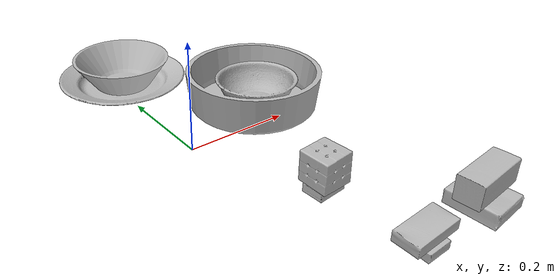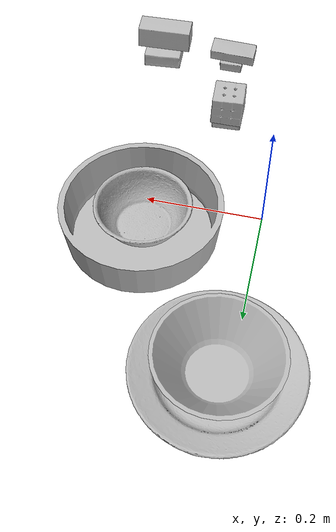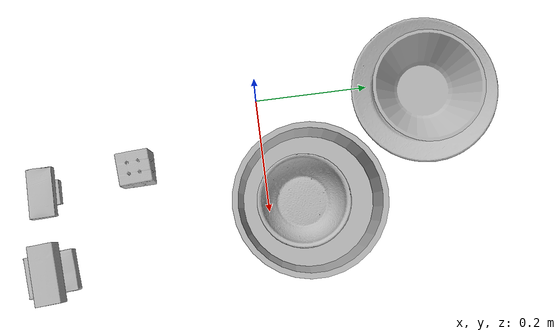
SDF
<?xml version="1.0" ?>
<sdf version="1.4">
  <world name="default">
    <light name="light1" type="point">
      <pose>0 0 1 0 0 0</pose>
      <diffuse>3 3 3 1</diffuse>
      <specular>3 3 3 1</specular>
    </light>
    <light name="light2" type="point">
      <pose>0 0.5 2 0 0 0</pose>
      <diffuse>1 1 1 1</diffuse>
      <specular>1 1 1 1</specular>
    </light>
    <light name="light3" type="point">
      <pose>0 0.5 2 0 0 0</pose>
      <diffuse>3 3 3 1</diffuse>
      <specular>3 3 3 1</specular>
    </light>
    <scene>
      <ambient>0.7 0.7 0.7</ambient>
    </scene>
    <model name="box1">
      <link name="link_box1">
        <collision name="default">
          <geometry>
            <mesh>
              <uri>model://cracker_box/collision_meshes/collision.obj</uri>
              <scale>0.25 0.25 0.25</scale>
            </mesh>
          </geometry>
          <surface>
            <friction>
              <ode>
                <mu>0.5</mu>
                <mu2>0.5</mu2>
              </ode>
            </friction>
          </surface>
        </collision>
        <visual name="default">
          <geometry>
            <mesh>
              <uri>model://cracker_box/visual_meshes/visual.dae</uri>
              <scale>0.25 0.25 0.25</scale>
            </mesh>
          </geometry>
        </visual>
        <inertial>
          <mass>0.050503700971603394</mass>
          <pose>0.0002366037224419415 6.358561950037256e-05 -0.0004257383698131889 -0.00031620760376762643 -0.011106489600284392 0.0025467959332018085</pose>
          <inertia>
            <ixx>8.02868e-06</ixx>
            <iyy>1.3256925e-05</iyy>
            <izz>1.8918852e-05</izz>
            <ixy>0</ixy>
            <ixz>0</ixz>
            <iyz>0</iyz>
          </inertia>
        </inertial>
      </link>
      <pose>0.09992917627096176 -0.21985317766666412 0.00911968294531107 -0.01172757208586933 -0.00735673897063831 0.05389628231183103</pose>
    </model>
    <model name="box11">
      <link name="link_box11">
        <collision name="default">
          <geometry>
            <mesh>
              <uri>model://rubiks_cube/collision_meshes/collision.obj</uri>
              <scale>1.0 1.0 1.0</scale>
            </mesh>
          </geometry>
          <surface>
            <friction>
              <ode>
                <mu>0.5</mu>
                <mu2>0.5</mu2>
              </ode>
            </friction>
          </surface>
        </collision>
        <visual name="default">
          <geometry>
            <mesh>
              <uri>model://rubiks_cube/visual_meshes/visual.dae</uri>
              <scale>1.0 1.0 1.0</scale>
            </mesh>
          </geometry>
        </visual>
        <inertial>
          <mass>0.15071694552898407</mass>
          <pose>2.6721043468569405e-05 5.2569666877388954e-05 -7.264316082000732e-06 -0.05467297119259296 -0.09814009057422186 -0.034453654418704155</pose>
          <inertia>
            <ixx>8.328124e-05</ixx>
            <iyy>8.2892846e-05</iyy>
            <izz>8.397135e-05</izz>
            <ixy>0</ixy>
            <ixz>0</ixz>
            <iyz>0</iyz>
          </inertia>
        </inertial>
      </link>
      <pose>0.0992947518825531 -0.21992871165275574 0.046680036932229996 -0.006763152957125365 -0.023963913121686675 0.054275246480647465</pose>
    </model>
    <model name="box2">
      <link name="link_box2">
        <collision name="default">
          <geometry>
            <mesh>
              <uri>model://gelatin_box/collision_meshes/collision.obj</uri>
              <scale>1.0 1.0 1.0</scale>
            </mesh>
          </geometry>
          <surface>
            <friction>
              <ode>
                <mu>0.5</mu>
                <mu2>0.5</mu2>
              </ode>
            </friction>
          </surface>
        </collision>
        <visual name="default">
          <geometry>
            <mesh>
              <uri>model://gelatin_box/visual_meshes/visual.dae</uri>
              <scale>1.0 1.0 1.0</scale>
            </mesh>
          </geometry>
        </visual>
        <inertial>
          <mass>0.24173277616500854</mass>
          <pose>0.00043196187471039593 0.00011156872642459348 -0.0003640321083366871 -0.001050371835386973 -0.004755817297158009 0.016440553881960234</pose>
          <inertia>
            <ixx>0.00017064363</ixx>
            <iyy>0.00012188985</iyy>
            <izz>0.00025975762</izz>
            <ixy>0</ixy>
            <ixz>0</ixz>
            <iyz>0</iyz>
          </inertia>
        </inertial>
      </link>
      <pose>0.25990861654281616 -0.39006122946739197 0.015168346464633942 0.005596204043040468 -0.007305278000578755 0.06416005337698731</pose>
    </model>
    <model name="box21">
      <link name="link_box21">
        <collision name="default">
          <geometry>
            <mesh>
              <uri>model://wood_block/collision_meshes/collision.obj</uri>
              <scale>0.5 0.5 0.5</scale>
            </mesh>
          </geometry>
          <surface>
            <friction>
              <ode>
                <mu>0.5</mu>
                <mu2>0.5</mu2>
              </ode>
            </friction>
          </surface>
        </collision>
        <visual name="default">
          <geometry>
            <mesh>
              <uri>model://wood_block/visual_meshes/visual.dae</uri>
              <scale>0.5 0.5 0.5</scale>
            </mesh>
          </geometry>
        </visual>
        <inertial>
          <mass>0.16252566874027252</mass>
          <pose>-2.906657982748584e-06 -0.000285404734313488 0.00013204291462898254 -0.05220975528683206 -0.005192696037335319 -0.006861378846526553</pose>
          <inertia>
            <ixx>5.437098e-05</ixx>
            <iyy>0.00017175796</iyy>
            <izz>0.00017111548</izz>
            <ixy>0</ixy>
            <ixz>0</ixz>
            <iyz>0</iyz>
          </inertia>
        </inertial>
      </link>
      <pose>0.259225457906723 -0.38888663053512573 0.05228443071246147 -0.010838074870744575 -0.02389368508760935 0.06600438835757143</pose>
    </model>
    <model name="box3">
      <link name="link_box3">
        <collision name="default">
          <geometry>
            <mesh>
              <uri>model://pudding_box/collision_meshes/collision.obj</uri>
              <scale>0.5 0.5 0.5</scale>
            </mesh>
          </geometry>
          <surface>
            <friction>
              <ode>
                <mu>0.5</mu>
                <mu2>0.5</mu2>
              </ode>
            </friction>
          </surface>
        </collision>
        <visual name="default">
          <geometry>
            <mesh>
              <uri>model://pudding_box/visual_meshes/visual.dae</uri>
              <scale>0.5 0.5 0.5</scale>
            </mesh>
          </geometry>
        </visual>
        <inertial>
          <mass>0.05576644837856293</mass>
          <pose>0.00024474109522998333 0.0004033942532259971 -0.0002594413817860186 0.005213101792545572 -0.006603798718575614 0.020079825159656634</pose>
          <inertia>
            <ixx>1.5760277e-05</ixx>
            <iyy>1.0603625e-05</iyy>
            <izz>2.3274164e-05</izz>
            <ixy>0</ixy>
            <ixz>0</ixz>
            <iyz>0</iyz>
          </inertia>
        </inertial>
      </link>
      <pose>0.11974311619997025 -0.3902556896209717 0.009862728416919708 0.02247407275693617 -0.011363962856023285 0.006343644502159514</pose>
    </model>
    <model name="box31">
      <link name="link_box31">
        <collision name="default">
          <geometry>
            <mesh>
              <uri>model://sugar_box/collision_meshes/collision.obj</uri>
              <scale>0.5 0.5 0.5</scale>
            </mesh>
          </geometry>
          <surface>
            <friction>
              <ode>
                <mu>0.5</mu>
                <mu2>0.5</mu2>
              </ode>
            </friction>
          </surface>
        </collision>
        <visual name="default">
          <geometry>
            <mesh>
              <uri>model://sugar_box/visual_meshes/visual.dae</uri>
              <scale>0.5 0.5 0.5</scale>
            </mesh>
          </geometry>
        </visual>
        <inertial>
          <mass>0.1100529357790947</mass>
          <pose>0.0005171863595023751 1.924554817378521e-05 -0.00018182402709499002 -0.00040462641680988955 0.001050663522315131 0.0026153787888612426</pose>
          <inertia>
            <ixx>2.2923945e-05</ixx>
            <iyy>7.409492e-05</iyy>
            <izz>8.870046e-05</izz>
            <ixy>0</ixy>
            <ixz>0</ixz>
            <iyz>0</iyz>
          </inertia>
        </inertial>
      </link>
      <pose>0.11901233345270157 -0.3906557261943817 0.030520642176270485 0.013852094491856827 -0.05494436791767656 0.006061457827429959</pose>
    </model>
    <model name="plate1">
      <link name="link_plate1">
        <collision name="default">
          <geometry>
            <mesh>
              <uri>model://pan_tefal/collision_meshes/collision.obj</uri>
              <scale>1.0 1.0 1.0</scale>
            </mesh>
          </geometry>
          <surface>
            <friction>
              <ode>
                <mu>0.5</mu>
                <mu2>0.5</mu2>
              </ode>
            </friction>
          </surface>
        </collision>
        <visual name="default">
          <geometry>
            <mesh>
              <uri>model://pan_tefal/visual_meshes/visual.dae</uri>
              <scale>1.0 1.0 1.0</scale>
            </mesh>
          </geometry>
        </visual>
        <inertial>
          <mass>1.207520604133606</mass>
          <pose>-0.00018002177239395678 3.2792409911053255e-05 -0.00851493701338768 0.0008190288495961148 -0.0003301407263612178 -0.3318541272495768</pose>
          <inertia>
            <ixx>0.008335457</ixx>
            <iyy>0.008389196</iyy>
            <izz>0.015343971</izz>
            <ixy>0</ixy>
            <ixz>0</ixz>
            <iyz>0</iyz>
          </inertia>
        </inertial>
      </link>
      <pose>0.18999995291233063 0.070000059902668 0.038050003349781036 1.0961732557621588e-10 -5.77416449418758e-09 0.09441844540138739</pose>
    </model>
    <model name="bowl1">
      <link name="link_bowl1">
        <collision name="default">
          <geometry>
            <mesh>
              <uri>model://bowl/collision_meshes/collision.obj</uri>
              <scale>1.0 1.0 1.0</scale>
            </mesh>
          </geometry>
          <surface>
            <friction>
              <ode>
                <mu>0.5</mu>
                <mu2>0.5</mu2>
              </ode>
            </friction>
          </surface>
        </collision>
        <visual name="default">
          <geometry>
            <mesh>
              <uri>model://bowl/visual_meshes/visual.dae</uri>
              <scale>1.0 1.0 1.0</scale>
            </mesh>
          </geometry>
        </visual>
        <inertial>
          <mass>0.09256309270858765</mass>
          <pose>0.00020445158588699996 -0.001030202372930944 -0.0008042642730288208 -0.015764073075752352 0.01454679669645375 0.7140412125775129</pose>
          <inertia>
            <ixx>0.00021262471</ixx>
            <iyy>0.00020787389</iyy>
            <izz>0.00035770793</izz>
            <ixy>0</ixy>
            <ixz>0</ixz>
            <iyz>0</iyz>
          </inertia>
        </inertial>
      </link>
      <pose>0.19001193344593048 0.059974223375320435 0.03547603636980057 0.000989835190397823 0.00033668728249304497 0.0933615818241076</pose>
    </model>
    <model name="plate2">
      <link name="link_plate2">
        <collision name="default">
          <geometry>
            <mesh>
              <uri>model://plate/collision_meshes/collision.obj</uri>
              <scale>1.0 1.0 1.0</scale>
            </mesh>
          </geometry>
          <surface>
            <friction>
              <ode>
                <mu>0.5</mu>
                <mu2>0.5</mu2>
              </ode>
            </friction>
          </surface>
        </collision>
        <visual name="default">
          <geometry>
            <mesh>
              <uri>model://plate/visual_meshes/visual.dae</uri>
              <scale>1.0 1.0 1.0</scale>
            </mesh>
          </geometry>
        </visual>
        <inertial>
          <mass>0.22150008380413055</mass>
          <pose>-0.0006044640904292464 0.0002782581141218543 -0.0010561984963715076 0.0022187839711676756 -0.00322547471274247 0.4526095389577293</pose>
          <inertia>
            <ixx>0.0010361817</ixx>
            <iyy>0.0010262709</iyy>
            <izz>0.0020266173</izz>
            <ixy>0</ixy>
            <ixz>0</ixz>
            <iyz>0</iyz>
          </inertia>
        </inertial>
      </link>
      <pose>0.019999932497739792 0.30000001192092896 0.01373324729502201 -1.0741150877234136e-06 -3.3047475517483304e-06 0.08414020734189998</pose>
    </model>
    <model name="bowl2">
      <link name="link_bowl2">
        <collision name="default">
          <geometry>
            <mesh>
              <uri>model://bowl_a/collision_meshes/collision.obj</uri>
              <scale>1.0 1.0 1.0</scale>
            </mesh>
          </geometry>
          <surface>
            <friction>
              <ode>
                <mu>0.5</mu>
                <mu2>0.5</mu2>
              </ode>
            </friction>
          </surface>
        </collision>
        <visual name="default">
          <geometry>
            <mesh>
              <uri>model://bowl_a/visual_meshes/visual.dae</uri>
              <scale>1.0 1.0 1.0</scale>
            </mesh>
          </geometry>
        </visual>
        <inertial>
          <mass>0.4869906008243561</mass>
          <pose>0.0002786735713016242 4.731232547783293e-05 -0.001376529224216938 -0.0009805388639875933 -0.0010938169956893674 -0.19123322132810686</pose>
          <inertia>
            <ixx>0.0013864844</ixx>
            <iyy>0.0013949967</iyy>
            <izz>0.0024659163</izz>
            <ixy>0</ixy>
            <ixz>0</ixz>
            <iyz>0</iyz>
          </inertia>
        </inertial>
      </link>
      <pose>0.019991440698504448 0.29961419105529785 0.034787148237228394 0.012326667036330978 -0.0034863370080972476 0.26075629061208705</pose>
    </model>
  </world>
</sdf>
